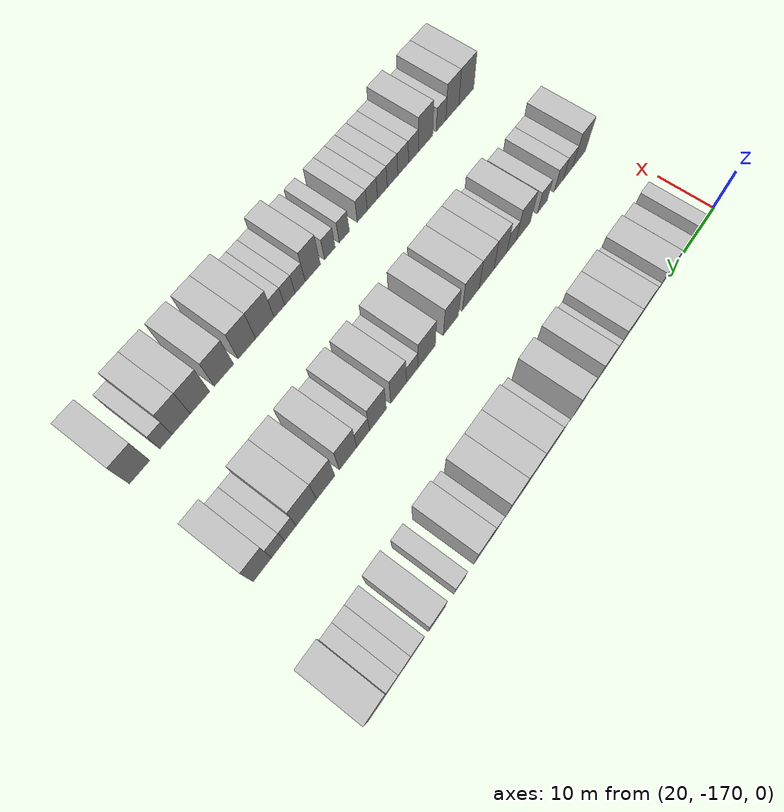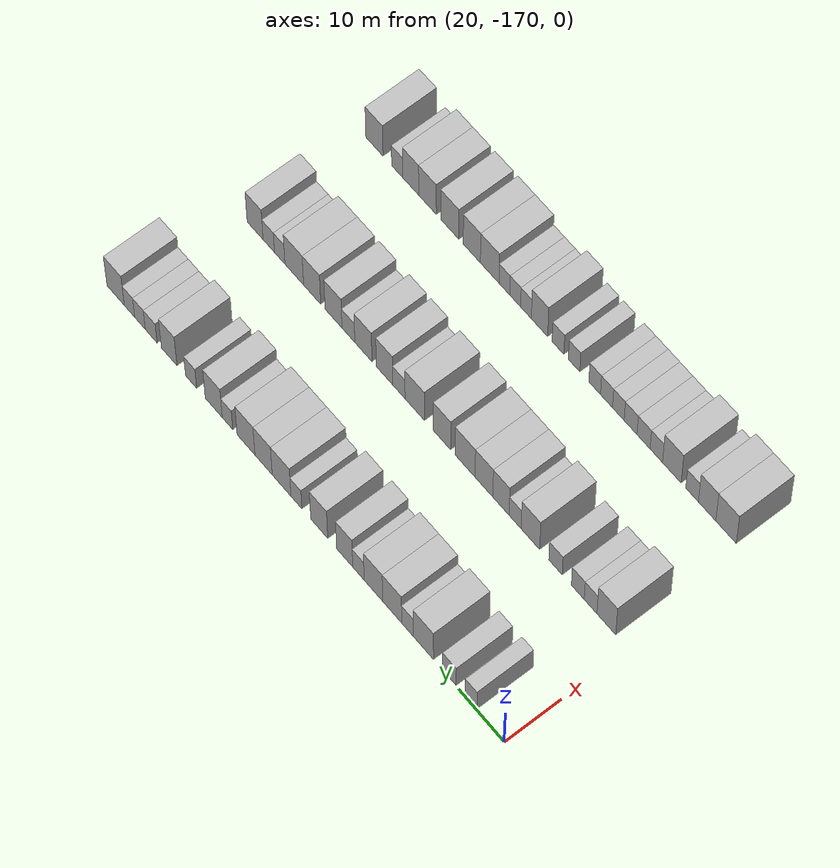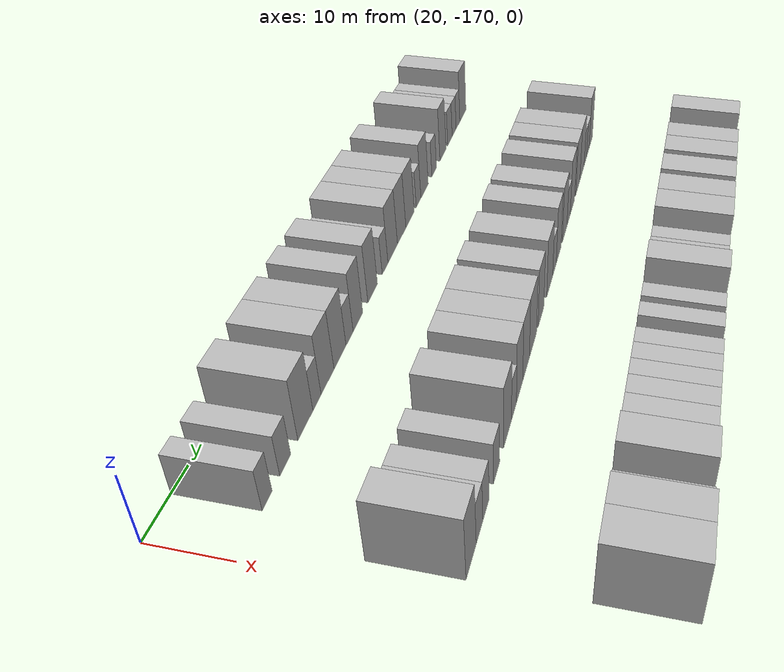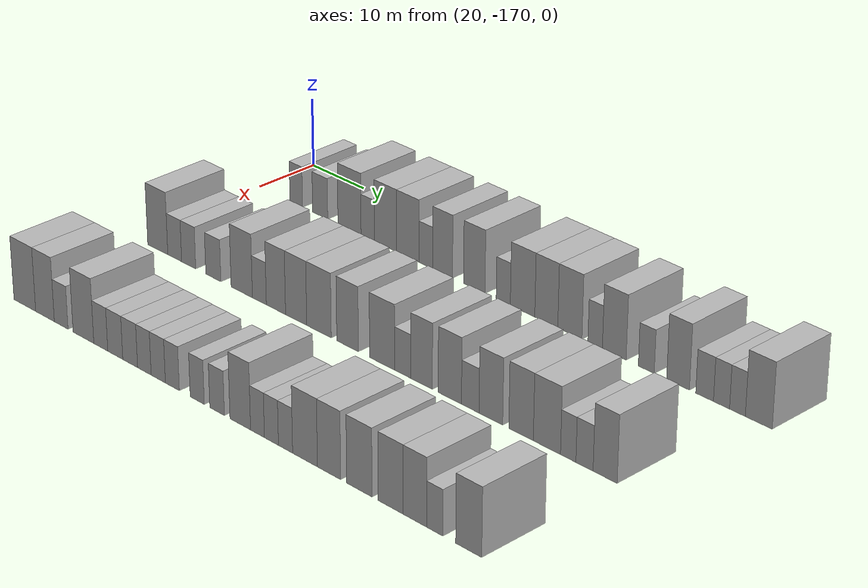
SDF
<sdf version="1.6">
 <world name="default">
  <model name="building_24">
   <static>1</static>
   <pose>25.0000 -162.6117 0 0.000000 0.000000 0.000000</pose>
   <link name="link">
    <pose>0 0 3.00 0 0 0</pose>
    <collision name="collision"><geometry><box><size>10.0000 2.5330 6.0000</size></box></geometry></collision>
    <visual name="visual">
     <cast_shadows>0</cast_shadows>
     <geometry><box><size>10.0000 2.5330 6.0000</size></box></geometry>
     <material>
      <script>
       <uri>model://HANNAS_wall/materials/scripts</uri>
       <uri>model://HANNAS_wall/materials/textures</uri>
       <name>vrc/HANNAS_wall</name>
      </script>
     </material>
    </visual>
   </link>
  </model>
  <model name="building_25">
   <static>1</static>
   <pose>25.0000 -157.8516 0 0.000000 0.000000 0.000000</pose>
   <link name="link">
    <pose>0 0 3.00 0 0 0</pose>
    <collision name="collision"><geometry><box><size>10.0000 2.9871 6.0000</size></box></geometry></collision>
    <visual name="visual">
     <cast_shadows>0</cast_shadows>
     <geometry><box><size>10.0000 2.9871 6.0000</size></box></geometry>
     <material>
      <script>
       <uri>model://HANNAS_wall/materials/scripts</uri>
       <uri>model://HANNAS_wall/materials/textures</uri>
       <name>vrc/HANNAS_wall</name>
      </script>
     </material>
    </visual>
   </link>
  </model>
  <model name="building_26">
   <static>1</static>
   <pose>25.0000 -152.1176 0 0.000000 0.000000 0.000000</pose>
   <link name="link">
    <pose>0 0 4.50 0 0 0</pose>
    <collision name="collision"><geometry><box><size>10.0000 4.4809 9.0000</size></box></geometry></collision>
    <visual name="visual">
     <cast_shadows>0</cast_shadows>
     <geometry><box><size>10.0000 4.4809 9.0000</size></box></geometry>
     <material>
      <script>
       <uri>model://HANNAS_wall/materials/scripts</uri>
       <uri>model://HANNAS_wall/materials/textures</uri>
       <name>vrc/HANNAS_wall</name>
      </script>
     </material>
    </visual>
   </link>
  </model>
  <model name="building_27">
   <static>1</static>
   <pose>25.0000 -148.6011 0 0.000000 0.000000 0.000000</pose>
   <link name="link">
    <pose>0 0 3.00 0 0 0</pose>
    <collision name="collision"><geometry><box><size>10.0000 2.5522 6.0000</size></box></geometry></collision>
    <visual name="visual">
     <cast_shadows>0</cast_shadows>
     <geometry><box><size>10.0000 2.5522 6.0000</size></box></geometry>
     <material>
      <script>
       <uri>model://HANNAS_wall/materials/scripts</uri>
       <uri>model://HANNAS_wall/materials/textures</uri>
       <name>vrc/HANNAS_wall</name>
      </script>
     </material>
    </visual>
   </link>
  </model>
  <model name="building_28">
   <static>1</static>
   <pose>25.0000 -145.2141 0 0.000000 0.000000 0.000000</pose>
   <link name="link">
    <pose>0 0 4.50 0 0 0</pose>
    <collision name="collision"><geometry><box><size>10.0000 4.2217 9.0000</size></box></geometry></collision>
    <visual name="visual">
     <cast_shadows>0</cast_shadows>
     <geometry><box><size>10.0000 4.2217 9.0000</size></box></geometry>
     <material>
      <script>
       <uri>model://HANNAS_wall/materials/scripts</uri>
       <uri>model://HANNAS_wall/materials/textures</uri>
       <name>vrc/HANNAS_wall</name>
      </script>
     </material>
    </visual>
   </link>
  </model>
  <model name="building_29">
   <static>1</static>
   <pose>25.0000 -141.0265 0 0.000000 0.000000 0.000000</pose>
   <link name="link">
    <pose>0 0 4.50 0 0 0</pose>
    <collision name="collision"><geometry><box><size>10.0000 4.1534 9.0000</size></box></geometry></collision>
    <visual name="visual">
     <cast_shadows>0</cast_shadows>
     <geometry><box><size>10.0000 4.1534 9.0000</size></box></geometry>
     <material>
      <script>
       <uri>model://HANNAS_wall/materials/scripts</uri>
       <uri>model://HANNAS_wall/materials/textures</uri>
       <name>vrc/HANNAS_wall</name>
      </script>
     </material>
    </visual>
   </link>
  </model>
  <model name="building_30">
   <static>1</static>
   <pose>25.0000 -137.6640 0 0.000000 0.000000 0.000000</pose>
   <link name="link">
    <pose>0 0 3.00 0 0 0</pose>
    <collision name="collision"><geometry><box><size>10.0000 2.5716 6.0000</size></box></geometry></collision>
    <visual name="visual">
     <cast_shadows>0</cast_shadows>
     <geometry><box><size>10.0000 2.5716 6.0000</size></box></geometry>
     <material>
      <script>
       <uri>model://HANNAS_wall/materials/scripts</uri>
       <uri>model://HANNAS_wall/materials/textures</uri>
       <name>vrc/HANNAS_wall</name>
      </script>
     </material>
    </visual>
   </link>
  </model>
  <model name="building_31">
   <static>1</static>
   <pose>25.0000 -134.5662 0 0.000000 0.000000 0.000000</pose>
   <link name="link">
    <pose>0 0 4.50 0 0 0</pose>
    <collision name="collision"><geometry><box><size>10.0000 3.6239 9.0000</size></box></geometry></collision>
    <visual name="visual">
     <cast_shadows>0</cast_shadows>
     <geometry><box><size>10.0000 3.6239 9.0000</size></box></geometry>
     <material>
      <script>
       <uri>model://HANNAS_wall/materials/scripts</uri>
       <uri>model://HANNAS_wall/materials/textures</uri>
       <name>vrc/HANNAS_wall</name>
      </script>
     </material>
    </visual>
   </link>
  </model>
  <model name="building_32">
   <static>1</static>
   <pose>25.0000 -128.8275 0 0.000000 0.000000 0.000000</pose>
   <link name="link">
    <pose>0 0 4.50 0 0 0</pose>
    <collision name="collision"><geometry><box><size>10.0000 3.8537 9.0000</size></box></geometry></collision>
    <visual name="visual">
     <cast_shadows>0</cast_shadows>
     <geometry><box><size>10.0000 3.8537 9.0000</size></box></geometry>
     <material>
      <script>
       <uri>model://HANNAS_wall/materials/scripts</uri>
       <uri>model://HANNAS_wall/materials/textures</uri>
       <name>vrc/HANNAS_wall</name>
      </script>
     </material>
    </visual>
   </link>
  </model>
  <model name="building_33">
   <static>1</static>
   <pose>25.0000 -123.6524 0 0.000000 0.000000 0.000000</pose>
   <link name="link">
    <pose>0 0 3.00 0 0 0</pose>
    <collision name="collision"><geometry><box><size>10.0000 2.4964 6.0000</size></box></geometry></collision>
    <visual name="visual">
     <cast_shadows>0</cast_shadows>
     <geometry><box><size>10.0000 2.4964 6.0000</size></box></geometry>
     <material>
      <script>
       <uri>model://HANNAS_wall/materials/scripts</uri>
       <uri>model://HANNAS_wall/materials/textures</uri>
       <name>vrc/HANNAS_wall</name>
      </script>
     </material>
    </visual>
   </link>
  </model>
  <model name="building_34">
   <static>1</static>
   <pose>25.0000 -120.2698 0 0.000000 0.000000 0.000000</pose>
   <link name="link">
    <pose>0 0 4.50 0 0 0</pose>
    <collision name="collision"><geometry><box><size>10.0000 4.2689 9.0000</size></box></geometry></collision>
    <visual name="visual">
     <cast_shadows>0</cast_shadows>
     <geometry><box><size>10.0000 4.2689 9.0000</size></box></geometry>
     <material>
      <script>
       <uri>model://HANNAS_wall/materials/scripts</uri>
       <uri>model://HANNAS_wall/materials/textures</uri>
       <name>vrc/HANNAS_wall</name>
      </script>
     </material>
    </visual>
   </link>
  </model>
  <model name="building_35">
   <static>1</static>
   <pose>25.0000 -116.1545 0 0.000000 0.000000 0.000000</pose>
   <link name="link">
    <pose>0 0 4.50 0 0 0</pose>
    <collision name="collision"><geometry><box><size>10.0000 3.9617 9.0000</size></box></geometry></collision>
    <visual name="visual">
     <cast_shadows>0</cast_shadows>
     <geometry><box><size>10.0000 3.9617 9.0000</size></box></geometry>
     <material>
      <script>
       <uri>model://HANNAS_wall/materials/scripts</uri>
       <uri>model://HANNAS_wall/materials/textures</uri>
       <name>vrc/HANNAS_wall</name>
      </script>
     </material>
    </visual>
   </link>
  </model>
  <model name="building_36">
   <static>1</static>
   <pose>25.0000 -112.1218 0 0.000000 0.000000 0.000000</pose>
   <link name="link">
    <pose>0 0 4.50 0 0 0</pose>
    <collision name="collision"><geometry><box><size>10.0000 4.1037 9.0000</size></box></geometry></collision>
    <visual name="visual">
     <cast_shadows>0</cast_shadows>
     <geometry><box><size>10.0000 4.1037 9.0000</size></box></geometry>
     <material>
      <script>
       <uri>model://HANNAS_wall/materials/scripts</uri>
       <uri>model://HANNAS_wall/materials/textures</uri>
       <name>vrc/HANNAS_wall</name>
      </script>
     </material>
    </visual>
   </link>
  </model>
  <model name="building_37">
   <static>1</static>
   <pose>25.0000 -107.8564 0 0.000000 0.000000 0.000000</pose>
   <link name="link">
    <pose>0 0 3.00 0 0 0</pose>
    <collision name="collision"><geometry><box><size>10.0000 2.4271 6.0000</size></box></geometry></collision>
    <visual name="visual">
     <cast_shadows>0</cast_shadows>
     <geometry><box><size>10.0000 2.4271 6.0000</size></box></geometry>
     <material>
      <script>
       <uri>model://HANNAS_wall/materials/scripts</uri>
       <uri>model://HANNAS_wall/materials/textures</uri>
       <name>vrc/HANNAS_wall</name>
      </script>
     </material>
    </visual>
   </link>
  </model>
  <model name="building_38">
   <static>1</static>
   <pose>25.0000 -104.6770 0 0.000000 0.000000 0.000000</pose>
   <link name="link">
    <pose>0 0 4.50 0 0 0</pose>
    <collision name="collision"><geometry><box><size>10.0000 3.9317 9.0000</size></box></geometry></collision>
    <visual name="visual">
     <cast_shadows>0</cast_shadows>
     <geometry><box><size>10.0000 3.9317 9.0000</size></box></geometry>
     <material>
      <script>
       <uri>model://HANNAS_wall/materials/scripts</uri>
       <uri>model://HANNAS_wall/materials/textures</uri>
       <name>vrc/HANNAS_wall</name>
      </script>
     </material>
    </visual>
   </link>
  </model>
  <model name="building_39">
   <static>1</static>
   <pose>25.0000 -99.4167 0 0.000000 0.000000 0.000000</pose>
   <link name="link">
    <pose>0 0 3.00 0 0 0</pose>
    <collision name="collision"><geometry><box><size>10.0000 2.5888 6.0000</size></box></geometry></collision>
    <visual name="visual">
     <cast_shadows>0</cast_shadows>
     <geometry><box><size>10.0000 2.5888 6.0000</size></box></geometry>
     <material>
      <script>
       <uri>model://HANNAS_wall/materials/scripts</uri>
       <uri>model://HANNAS_wall/materials/textures</uri>
       <name>vrc/HANNAS_wall</name>
      </script>
     </material>
    </visual>
   </link>
  </model>
  <model name="building_40">
   <static>1</static>
   <pose>25.0000 -94.3034 0 0.000000 0.000000 0.000000</pose>
   <link name="link">
    <pose>0 0 4.50 0 0 0</pose>
    <collision name="collision"><geometry><box><size>10.0000 3.6380 9.0000</size></box></geometry></collision>
    <visual name="visual">
     <cast_shadows>0</cast_shadows>
     <geometry><box><size>10.0000 3.6380 9.0000</size></box></geometry>
     <material>
      <script>
       <uri>model://HANNAS_wall/materials/scripts</uri>
       <uri>model://HANNAS_wall/materials/textures</uri>
       <name>vrc/HANNAS_wall</name>
      </script>
     </material>
    </visual>
   </link>
  </model>
  <model name="building_41">
   <static>1</static>
   <pose>25.0000 -90.0918 0 0.000000 0.000000 0.000000</pose>
   <link name="link">
    <pose>0 0 3.00 0 0 0</pose>
    <collision name="collision"><geometry><box><size>10.0000 2.7851 6.0000</size></box></geometry></collision>
    <visual name="visual">
     <cast_shadows>0</cast_shadows>
     <geometry><box><size>10.0000 2.7851 6.0000</size></box></geometry>
     <material>
      <script>
       <uri>model://HANNAS_wall/materials/scripts</uri>
       <uri>model://HANNAS_wall/materials/textures</uri>
       <name>vrc/HANNAS_wall</name>
      </script>
     </material>
    </visual>
   </link>
  </model>
  <model name="building_42">
   <static>1</static>
   <pose>25.0000 -87.4469 0 0.000000 0.000000 0.000000</pose>
   <link name="link">
    <pose>0 0 3.00 0 0 0</pose>
    <collision name="collision"><geometry><box><size>10.0000 2.5049 6.0000</size></box></geometry></collision>
    <visual name="visual">
     <cast_shadows>0</cast_shadows>
     <geometry><box><size>10.0000 2.5049 6.0000</size></box></geometry>
     <material>
      <script>
       <uri>model://HANNAS_wall/materials/scripts</uri>
       <uri>model://HANNAS_wall/materials/textures</uri>
       <name>vrc/HANNAS_wall</name>
      </script>
     </material>
    </visual>
   </link>
  </model>
  <model name="building_43">
   <static>1</static>
   <pose>25.0000 -84.9768 0 0.000000 0.000000 0.000000</pose>
   <link name="link">
    <pose>0 0 3.00 0 0 0</pose>
    <collision name="collision"><geometry><box><size>10.0000 2.4352 6.0000</size></box></geometry></collision>
    <visual name="visual">
     <cast_shadows>0</cast_shadows>
     <geometry><box><size>10.0000 2.4352 6.0000</size></box></geometry>
     <material>
      <script>
       <uri>model://HANNAS_wall/materials/scripts</uri>
       <uri>model://HANNAS_wall/materials/textures</uri>
       <name>vrc/HANNAS_wall</name>
      </script>
     </material>
    </visual>
   </link>
  </model>
  <model name="building_44">
   <static>1</static>
   <pose>25.0000 -81.7078 0 0.000000 0.000000 0.000000</pose>
   <link name="link">
    <pose>0 0 4.50 0 0 0</pose>
    <collision name="collision"><geometry><box><size>10.0000 4.1026 9.0000</size></box></geometry></collision>
    <visual name="visual">
     <cast_shadows>0</cast_shadows>
     <geometry><box><size>10.0000 4.1026 9.0000</size></box></geometry>
     <material>
      <script>
       <uri>model://HANNAS_wall/materials/scripts</uri>
       <uri>model://HANNAS_wall/materials/textures</uri>
       <name>vrc/HANNAS_wall</name>
      </script>
     </material>
    </visual>
   </link>
  </model>
  <model name="building_150">
   <static>1</static>
   <pose>47.0000 -165.2471 0 0.000000 0.000000 0.000000</pose>
   <link name="link">
    <pose>0 0 4.50 0 0 0</pose>
    <collision name="collision"><geometry><box><size>10.0000 4.0716 9.0000</size></box></geometry></collision>
    <visual name="visual">
     <cast_shadows>0</cast_shadows>
     <geometry><box><size>10.0000 4.0716 9.0000</size></box></geometry>
     <material>
      <script>
       <uri>model://HANNAS_wall/materials/scripts</uri>
       <uri>model://HANNAS_wall/materials/textures</uri>
       <name>vrc/HANNAS_wall</name>
      </script>
     </material>
    </visual>
   </link>
  </model>
  <model name="building_151">
   <static>1</static>
   <pose>47.0000 -161.8184 0 0.000000 0.000000 0.000000</pose>
   <link name="link">
    <pose>0 0 3.00 0 0 0</pose>
    <collision name="collision"><geometry><box><size>10.0000 2.7857 6.0000</size></box></geometry></collision>
    <visual name="visual">
     <cast_shadows>0</cast_shadows>
     <geometry><box><size>10.0000 2.7857 6.0000</size></box></geometry>
     <material>
      <script>
       <uri>model://HANNAS_wall/materials/scripts</uri>
       <uri>model://HANNAS_wall/materials/textures</uri>
       <name>vrc/HANNAS_wall</name>
      </script>
     </material>
    </visual>
   </link>
  </model>
  <model name="building_152">
   <static>1</static>
   <pose>47.0000 -159.0209 0 0.000000 0.000000 0.000000</pose>
   <link name="link">
    <pose>0 0 3.00 0 0 0</pose>
    <collision name="collision"><geometry><box><size>10.0000 2.8094 6.0000</size></box></geometry></collision>
    <visual name="visual">
     <cast_shadows>0</cast_shadows>
     <geometry><box><size>10.0000 2.8094 6.0000</size></box></geometry>
     <material>
      <script>
       <uri>model://HANNAS_wall/materials/scripts</uri>
       <uri>model://HANNAS_wall/materials/textures</uri>
       <name>vrc/HANNAS_wall</name>
      </script>
     </material>
    </visual>
   </link>
  </model>
  <model name="building_153">
   <static>1</static>
   <pose>47.0000 -154.1370 0 0.000000 0.000000 0.000000</pose>
   <link name="link">
    <pose>0 0 3.00 0 0 0</pose>
    <collision name="collision"><geometry><box><size>10.0000 2.9584 6.0000</size></box></geometry></collision>
    <visual name="visual">
     <cast_shadows>0</cast_shadows>
     <geometry><box><size>10.0000 2.9584 6.0000</size></box></geometry>
     <material>
      <script>
       <uri>model://HANNAS_wall/materials/scripts</uri>
       <uri>model://HANNAS_wall/materials/textures</uri>
       <name>vrc/HANNAS_wall</name>
      </script>
     </material>
    </visual>
   </link>
  </model>
  <model name="building_154">
   <static>1</static>
   <pose>47.0000 -148.6091 0 0.000000 0.000000 0.000000</pose>
   <link name="link">
    <pose>0 0 4.50 0 0 0</pose>
    <collision name="collision"><geometry><box><size>10.0000 4.0973 9.0000</size></box></geometry></collision>
    <visual name="visual">
     <cast_shadows>0</cast_shadows>
     <geometry><box><size>10.0000 4.0973 9.0000</size></box></geometry>
     <material>
      <script>
       <uri>model://HANNAS_wall/materials/scripts</uri>
       <uri>model://HANNAS_wall/materials/textures</uri>
       <name>vrc/HANNAS_wall</name>
      </script>
     </material>
    </visual>
   </link>
  </model>
  <model name="building_155">
   <static>1</static>
   <pose>47.0000 -145.2331 0 0.000000 0.000000 0.000000</pose>
   <link name="link">
    <pose>0 0 3.00 0 0 0</pose>
    <collision name="collision"><geometry><box><size>10.0000 2.6548 6.0000</size></box></geometry></collision>
    <visual name="visual">
     <cast_shadows>0</cast_shadows>
     <geometry><box><size>10.0000 2.6548 6.0000</size></box></geometry>
     <material>
      <script>
       <uri>model://HANNAS_wall/materials/scripts</uri>
       <uri>model://HANNAS_wall/materials/textures</uri>
       <name>vrc/HANNAS_wall</name>
      </script>
     </material>
    </visual>
   </link>
  </model>
  <model name="building_156">
   <static>1</static>
   <pose>47.0000 -142.0942 0 0.000000 0.000000 0.000000</pose>
   <link name="link">
    <pose>0 0 4.50 0 0 0</pose>
    <collision name="collision"><geometry><box><size>10.0000 3.6230 9.0000</size></box></geometry></collision>
    <visual name="visual">
     <cast_shadows>0</cast_shadows>
     <geometry><box><size>10.0000 3.6230 9.0000</size></box></geometry>
     <material>
      <script>
       <uri>model://HANNAS_wall/materials/scripts</uri>
       <uri>model://HANNAS_wall/materials/textures</uri>
       <name>vrc/HANNAS_wall</name>
      </script>
     </material>
    </visual>
   </link>
  </model>
  <model name="building_157">
   <static>1</static>
   <pose>47.0000 -138.3102 0 0.000000 0.000000 0.000000</pose>
   <link name="link">
    <pose>0 0 4.50 0 0 0</pose>
    <collision name="collision"><geometry><box><size>10.0000 3.9448 9.0000</size></box></geometry></collision>
    <visual name="visual">
     <cast_shadows>0</cast_shadows>
     <geometry><box><size>10.0000 3.9448 9.0000</size></box></geometry>
     <material>
      <script>
       <uri>model://HANNAS_wall/materials/scripts</uri>
       <uri>model://HANNAS_wall/materials/textures</uri>
       <name>vrc/HANNAS_wall</name>
      </script>
     </material>
    </visual>
   </link>
  </model>
  <model name="building_158">
   <static>1</static>
   <pose>47.0000 -134.0884 0 0.000000 0.000000 0.000000</pose>
   <link name="link">
    <pose>0 0 4.50 0 0 0</pose>
    <collision name="collision"><geometry><box><size>10.0000 4.4989 9.0000</size></box></geometry></collision>
    <visual name="visual">
     <cast_shadows>0</cast_shadows>
     <geometry><box><size>10.0000 4.4989 9.0000</size></box></geometry>
     <material>
      <script>
       <uri>model://HANNAS_wall/materials/scripts</uri>
       <uri>model://HANNAS_wall/materials/textures</uri>
       <name>vrc/HANNAS_wall</name>
      </script>
     </material>
    </visual>
   </link>
  </model>
  <model name="building_159">
   <static>1</static>
   <pose>47.0000 -128.8917 0 0.000000 0.000000 0.000000</pose>
   <link name="link">
    <pose>0 0 4.50 0 0 0</pose>
    <collision name="collision"><geometry><box><size>10.0000 3.8944 9.0000</size></box></geometry></collision>
    <visual name="visual">
     <cast_shadows>0</cast_shadows>
     <geometry><box><size>10.0000 3.8944 9.0000</size></box></geometry>
     <material>
      <script>
       <uri>model://HANNAS_wall/materials/scripts</uri>
       <uri>model://HANNAS_wall/materials/textures</uri>
       <name>vrc/HANNAS_wall</name>
      </script>
     </material>
    </visual>
   </link>
  </model>
  <model name="building_160">
   <static>1</static>
   <pose>47.0000 -122.7475 0 0.000000 0.000000 0.000000</pose>
   <link name="link">
    <pose>0 0 4.50 0 0 0</pose>
    <collision name="collision"><geometry><box><size>10.0000 4.3940 9.0000</size></box></geometry></collision>
    <visual name="visual">
     <cast_shadows>0</cast_shadows>
     <geometry><box><size>10.0000 4.3940 9.0000</size></box></geometry>
     <material>
      <script>
       <uri>model://HANNAS_wall/materials/scripts</uri>
       <uri>model://HANNAS_wall/materials/textures</uri>
       <name>vrc/HANNAS_wall</name>
      </script>
     </material>
    </visual>
   </link>
  </model>
  <model name="building_161">
   <static>1</static>
   <pose>47.0000 -119.1583 0 0.000000 0.000000 0.000000</pose>
   <link name="link">
    <pose>0 0 3.00 0 0 0</pose>
    <collision name="collision"><geometry><box><size>10.0000 2.7843 6.0000</size></box></geometry></collision>
    <visual name="visual">
     <cast_shadows>0</cast_shadows>
     <geometry><box><size>10.0000 2.7843 6.0000</size></box></geometry>
     <material>
      <script>
       <uri>model://HANNAS_wall/materials/scripts</uri>
       <uri>model://HANNAS_wall/materials/textures</uri>
       <name>vrc/HANNAS_wall</name>
      </script>
     </material>
    </visual>
   </link>
  </model>
  <model name="building_162">
   <static>1</static>
   <pose>47.0000 -115.8877 0 0.000000 0.000000 0.000000</pose>
   <link name="link">
    <pose>0 0 4.50 0 0 0</pose>
    <collision name="collision"><geometry><box><size>10.0000 3.7570 9.0000</size></box></geometry></collision>
    <visual name="visual">
     <cast_shadows>0</cast_shadows>
     <geometry><box><size>10.0000 3.7570 9.0000</size></box></geometry>
     <material>
      <script>
       <uri>model://HANNAS_wall/materials/scripts</uri>
       <uri>model://HANNAS_wall/materials/textures</uri>
       <name>vrc/HANNAS_wall</name>
      </script>
     </material>
    </visual>
   </link>
  </model>
  <model name="building_163">
   <static>1</static>
   <pose>47.0000 -111.0406 0 0.000000 0.000000 0.000000</pose>
   <link name="link">
    <pose>0 0 4.50 0 0 0</pose>
    <collision name="collision"><geometry><box><size>10.0000 3.9372 9.0000</size></box></geometry></collision>
    <visual name="visual">
     <cast_shadows>0</cast_shadows>
     <geometry><box><size>10.0000 3.9372 9.0000</size></box></geometry>
     <material>
      <script>
       <uri>model://HANNAS_wall/materials/scripts</uri>
       <uri>model://HANNAS_wall/materials/textures</uri>
       <name>vrc/HANNAS_wall</name>
      </script>
     </material>
    </visual>
   </link>
  </model>
  <model name="building_164">
   <static>1</static>
   <pose>47.0000 -107.6053 0 0.000000 0.000000 0.000000</pose>
   <link name="link">
    <pose>0 0 3.00 0 0 0</pose>
    <collision name="collision"><geometry><box><size>10.0000 2.9334 6.0000</size></box></geometry></collision>
    <visual name="visual">
     <cast_shadows>0</cast_shadows>
     <geometry><box><size>10.0000 2.9334 6.0000</size></box></geometry>
     <material>
      <script>
       <uri>model://HANNAS_wall/materials/scripts</uri>
       <uri>model://HANNAS_wall/materials/textures</uri>
       <name>vrc/HANNAS_wall</name>
      </script>
     </material>
    </visual>
   </link>
  </model>
  <model name="building_165">
   <static>1</static>
   <pose>47.0000 -104.1823 0 0.000000 0.000000 0.000000</pose>
   <link name="link">
    <pose>0 0 4.50 0 0 0</pose>
    <collision name="collision"><geometry><box><size>10.0000 3.9127 9.0000</size></box></geometry></collision>
    <visual name="visual">
     <cast_shadows>0</cast_shadows>
     <geometry><box><size>10.0000 3.9127 9.0000</size></box></geometry>
     <material>
      <script>
       <uri>model://HANNAS_wall/materials/scripts</uri>
       <uri>model://HANNAS_wall/materials/textures</uri>
       <name>vrc/HANNAS_wall</name>
      </script>
     </material>
    </visual>
   </link>
  </model>
  <model name="building_166">
   <static>1</static>
   <pose>47.0000 -99.2385 0 0.000000 0.000000 0.000000</pose>
   <link name="link">
    <pose>0 0 4.50 0 0 0</pose>
    <collision name="collision"><geometry><box><size>10.0000 3.9748 9.0000</size></box></geometry></collision>
    <visual name="visual">
     <cast_shadows>0</cast_shadows>
     <geometry><box><size>10.0000 3.9748 9.0000</size></box></geometry>
     <material>
      <script>
       <uri>model://HANNAS_wall/materials/scripts</uri>
       <uri>model://HANNAS_wall/materials/textures</uri>
       <name>vrc/HANNAS_wall</name>
      </script>
     </material>
    </visual>
   </link>
  </model>
  <model name="building_167">
   <static>1</static>
   <pose>47.0000 -95.0784 0 0.000000 0.000000 0.000000</pose>
   <link name="link">
    <pose>0 0 4.50 0 0 0</pose>
    <collision name="collision"><geometry><box><size>10.0000 4.3454 9.0000</size></box></geometry></collision>
    <visual name="visual">
     <cast_shadows>0</cast_shadows>
     <geometry><box><size>10.0000 4.3454 9.0000</size></box></geometry>
     <material>
      <script>
       <uri>model://HANNAS_wall/materials/scripts</uri>
       <uri>model://HANNAS_wall/materials/textures</uri>
       <name>vrc/HANNAS_wall</name>
      </script>
     </material>
    </visual>
   </link>
  </model>
  <model name="building_168">
   <static>1</static>
   <pose>47.0000 -91.6898 0 0.000000 0.000000 0.000000</pose>
   <link name="link">
    <pose>0 0 3.00 0 0 0</pose>
    <collision name="collision"><geometry><box><size>10.0000 2.4317 6.0000</size></box></geometry></collision>
    <visual name="visual">
     <cast_shadows>0</cast_shadows>
     <geometry><box><size>10.0000 2.4317 6.0000</size></box></geometry>
     <material>
      <script>
       <uri>model://HANNAS_wall/materials/scripts</uri>
       <uri>model://HANNAS_wall/materials/textures</uri>
       <name>vrc/HANNAS_wall</name>
      </script>
     </material>
    </visual>
   </link>
  </model>
  <model name="building_169">
   <static>1</static>
   <pose>47.0000 -89.1323 0 0.000000 0.000000 0.000000</pose>
   <link name="link">
    <pose>0 0 3.00 0 0 0</pose>
    <collision name="collision"><geometry><box><size>10.0000 2.6834 6.0000</size></box></geometry></collision>
    <visual name="visual">
     <cast_shadows>0</cast_shadows>
     <geometry><box><size>10.0000 2.6834 6.0000</size></box></geometry>
     <material>
      <script>
       <uri>model://HANNAS_wall/materials/scripts</uri>
       <uri>model://HANNAS_wall/materials/textures</uri>
       <name>vrc/HANNAS_wall</name>
      </script>
     </material>
    </visual>
   </link>
  </model>
  <model name="building_170">
   <static>1</static>
   <pose>47.0000 -85.9296 0 0.000000 0.000000 0.000000</pose>
   <link name="link">
    <pose>0 0 4.50 0 0 0</pose>
    <collision name="collision"><geometry><box><size>10.0000 3.7218 9.0000</size></box></geometry></collision>
    <visual name="visual">
     <cast_shadows>0</cast_shadows>
     <geometry><box><size>10.0000 3.7218 9.0000</size></box></geometry>
     <material>
      <script>
       <uri>model://HANNAS_wall/materials/scripts</uri>
       <uri>model://HANNAS_wall/materials/textures</uri>
       <name>vrc/HANNAS_wall</name>
      </script>
     </material>
    </visual>
   </link>
  </model>
  <model name="building_277">
   <static>1</static>
   <pose>69.0000 -164.9419 0 0.000000 0.000000 0.000000</pose>
   <link name="link">
    <pose>0 0 4.50 0 0 0</pose>
    <collision name="collision"><geometry><box><size>10.0000 4.4459 9.0000</size></box></geometry></collision>
    <visual name="visual">
     <cast_shadows>0</cast_shadows>
     <geometry><box><size>10.0000 4.4459 9.0000</size></box></geometry>
     <material>
      <script>
       <uri>model://HANNAS_wall/materials/scripts</uri>
       <uri>model://HANNAS_wall/materials/textures</uri>
       <name>vrc/HANNAS_wall</name>
      </script>
     </material>
    </visual>
   </link>
  </model>
  <model name="building_278">
   <static>1</static>
   <pose>69.0000 -160.8279 0 0.000000 0.000000 0.000000</pose>
   <link name="link">
    <pose>0 0 4.50 0 0 0</pose>
    <collision name="collision"><geometry><box><size>10.0000 3.7821 9.0000</size></box></geometry></collision>
    <visual name="visual">
     <cast_shadows>0</cast_shadows>
     <geometry><box><size>10.0000 3.7821 9.0000</size></box></geometry>
     <material>
      <script>
       <uri>model://HANNAS_wall/materials/scripts</uri>
       <uri>model://HANNAS_wall/materials/textures</uri>
       <name>vrc/HANNAS_wall</name>
      </script>
     </material>
    </visual>
   </link>
  </model>
  <model name="building_279">
   <static>1</static>
   <pose>69.0000 -157.5630 0 0.000000 0.000000 0.000000</pose>
   <link name="link">
    <pose>0 0 3.00 0 0 0</pose>
    <collision name="collision"><geometry><box><size>10.0000 2.7476 6.0000</size></box></geometry></collision>
    <visual name="visual">
     <cast_shadows>0</cast_shadows>
     <geometry><box><size>10.0000 2.7476 6.0000</size></box></geometry>
     <material>
      <script>
       <uri>model://HANNAS_wall/materials/scripts</uri>
       <uri>model://HANNAS_wall/materials/textures</uri>
       <name>vrc/HANNAS_wall</name>
      </script>
     </material>
    </visual>
   </link>
  </model>
  <model name="building_280">
   <static>1</static>
   <pose>69.0000 -153.1448 0 0.000000 0.000000 0.000000</pose>
   <link name="link">
    <pose>0 0 4.50 0 0 0</pose>
    <collision name="collision"><geometry><box><size>10.0000 4.0890 9.0000</size></box></geometry></collision>
    <visual name="visual">
     <cast_shadows>0</cast_shadows>
     <geometry><box><size>10.0000 4.0890 9.0000</size></box></geometry>
     <material>
      <script>
       <uri>model://HANNAS_wall/materials/scripts</uri>
       <uri>model://HANNAS_wall/materials/textures</uri>
       <name>vrc/HANNAS_wall</name>
      </script>
     </material>
    </visual>
   </link>
  </model>
  <model name="building_281">
   <static>1</static>
   <pose>69.0000 -149.7358 0 0.000000 0.000000 0.000000</pose>
   <link name="link">
    <pose>0 0 3.00 0 0 0</pose>
    <collision name="collision"><geometry><box><size>10.0000 2.7290 6.0000</size></box></geometry></collision>
    <visual name="visual">
     <cast_shadows>0</cast_shadows>
     <geometry><box><size>10.0000 2.7290 6.0000</size></box></geometry>
     <material>
      <script>
       <uri>model://HANNAS_wall/materials/scripts</uri>
       <uri>model://HANNAS_wall/materials/textures</uri>
       <name>vrc/HANNAS_wall</name>
      </script>
     </material>
    </visual>
   </link>
  </model>
  <model name="building_282">
   <static>1</static>
   <pose>69.0000 -146.9242 0 0.000000 0.000000 0.000000</pose>
   <link name="link">
    <pose>0 0 3.00 0 0 0</pose>
    <collision name="collision"><geometry><box><size>10.0000 2.8942 6.0000</size></box></geometry></collision>
    <visual name="visual">
     <cast_shadows>0</cast_shadows>
     <geometry><box><size>10.0000 2.8942 6.0000</size></box></geometry>
     <material>
      <script>
       <uri>model://HANNAS_wall/materials/scripts</uri>
       <uri>model://HANNAS_wall/materials/textures</uri>
       <name>vrc/HANNAS_wall</name>
      </script>
     </material>
    </visual>
   </link>
  </model>
  <model name="building_283">
   <static>1</static>
   <pose>69.0000 -144.0580 0 0.000000 0.000000 0.000000</pose>
   <link name="link">
    <pose>0 0 3.00 0 0 0</pose>
    <collision name="collision"><geometry><box><size>10.0000 2.8381 6.0000</size></box></geometry></collision>
    <visual name="visual">
     <cast_shadows>0</cast_shadows>
     <geometry><box><size>10.0000 2.8381 6.0000</size></box></geometry>
     <material>
      <script>
       <uri>model://HANNAS_wall/materials/scripts</uri>
       <uri>model://HANNAS_wall/materials/textures</uri>
       <name>vrc/HANNAS_wall</name>
      </script>
     </material>
    </visual>
   </link>
  </model>
  <model name="building_284">
   <static>1</static>
   <pose>69.0000 -141.3553 0 0.000000 0.000000 0.000000</pose>
   <link name="link">
    <pose>0 0 3.00 0 0 0</pose>
    <collision name="collision"><geometry><box><size>10.0000 2.5674 6.0000</size></box></geometry></collision>
    <visual name="visual">
     <cast_shadows>0</cast_shadows>
     <geometry><box><size>10.0000 2.5674 6.0000</size></box></geometry>
     <material>
      <script>
       <uri>model://HANNAS_wall/materials/scripts</uri>
       <uri>model://HANNAS_wall/materials/textures</uri>
       <name>vrc/HANNAS_wall</name>
      </script>
     </material>
    </visual>
   </link>
  </model>
  <model name="building_285">
   <static>1</static>
   <pose>69.0000 -138.7351 0 0.000000 0.000000 0.000000</pose>
   <link name="link">
    <pose>0 0 3.00 0 0 0</pose>
    <collision name="collision"><geometry><box><size>10.0000 2.6732 6.0000</size></box></geometry></collision>
    <visual name="visual">
     <cast_shadows>0</cast_shadows>
     <geometry><box><size>10.0000 2.6732 6.0000</size></box></geometry>
     <material>
      <script>
       <uri>model://HANNAS_wall/materials/scripts</uri>
       <uri>model://HANNAS_wall/materials/textures</uri>
       <name>vrc/HANNAS_wall</name>
      </script>
     </material>
    </visual>
   </link>
  </model>
  <model name="building_286">
   <static>1</static>
   <pose>69.0000 -136.1006 0 0.000000 0.000000 0.000000</pose>
   <link name="link">
    <pose>0 0 3.00 0 0 0</pose>
    <collision name="collision"><geometry><box><size>10.0000 2.5958 6.0000</size></box></geometry></collision>
    <visual name="visual">
     <cast_shadows>0</cast_shadows>
     <geometry><box><size>10.0000 2.5958 6.0000</size></box></geometry>
     <material>
      <script>
       <uri>model://HANNAS_wall/materials/scripts</uri>
       <uri>model://HANNAS_wall/materials/textures</uri>
       <name>vrc/HANNAS_wall</name>
      </script>
     </material>
    </visual>
   </link>
  </model>
  <model name="building_287">
   <static>1</static>
   <pose>69.0000 -131.5127 0 0.000000 0.000000 0.000000</pose>
   <link name="link">
    <pose>0 0 3.00 0 0 0</pose>
    <collision name="collision"><geometry><box><size>10.0000 2.5799 6.0000</size></box></geometry></collision>
    <visual name="visual">
     <cast_shadows>0</cast_shadows>
     <geometry><box><size>10.0000 2.5799 6.0000</size></box></geometry>
     <material>
      <script>
       <uri>model://HANNAS_wall/materials/scripts</uri>
       <uri>model://HANNAS_wall/materials/textures</uri>
       <name>vrc/HANNAS_wall</name>
      </script>
     </material>
    </visual>
   </link>
  </model>
  <model name="building_288">
   <static>1</static>
   <pose>69.0000 -127.9040 0 0.000000 0.000000 0.000000</pose>
   <link name="link">
    <pose>0 0 3.00 0 0 0</pose>
    <collision name="collision"><geometry><box><size>10.0000 2.6377 6.0000</size></box></geometry></collision>
    <visual name="visual">
     <cast_shadows>0</cast_shadows>
     <geometry><box><size>10.0000 2.6377 6.0000</size></box></geometry>
     <material>
      <script>
       <uri>model://HANNAS_wall/materials/scripts</uri>
       <uri>model://HANNAS_wall/materials/textures</uri>
       <name>vrc/HANNAS_wall</name>
      </script>
     </material>
    </visual>
   </link>
  </model>
  <model name="building_289">
   <static>1</static>
   <pose>69.0000 -123.7526 0 0.000000 0.000000 0.000000</pose>
   <link name="link">
    <pose>0 0 4.50 0 0 0</pose>
    <collision name="collision"><geometry><box><size>10.0000 3.6651 9.0000</size></box></geometry></collision>
    <visual name="visual">
     <cast_shadows>0</cast_shadows>
     <geometry><box><size>10.0000 3.6651 9.0000</size></box></geometry>
     <material>
      <script>
       <uri>model://HANNAS_wall/materials/scripts</uri>
       <uri>model://HANNAS_wall/materials/textures</uri>
       <name>vrc/HANNAS_wall</name>
      </script>
     </material>
    </visual>
   </link>
  </model>
  <model name="building_290">
   <static>1</static>
   <pose>69.0000 -120.7010 0 0.000000 0.000000 0.000000</pose>
   <link name="link">
    <pose>0 0 3.00 0 0 0</pose>
    <collision name="collision"><geometry><box><size>10.0000 2.4381 6.0000</size></box></geometry></collision>
    <visual name="visual">
     <cast_shadows>0</cast_shadows>
     <geometry><box><size>10.0000 2.4381 6.0000</size></box></geometry>
     <material>
      <script>
       <uri>model://HANNAS_wall/materials/scripts</uri>
       <uri>model://HANNAS_wall/materials/textures</uri>
       <name>vrc/HANNAS_wall</name>
      </script>
     </material>
    </visual>
   </link>
  </model>
  <model name="building_291">
   <static>1</static>
   <pose>69.0000 -118.2588 0 0.000000 0.000000 0.000000</pose>
   <link name="link">
    <pose>0 0 3.00 0 0 0</pose>
    <collision name="collision"><geometry><box><size>10.0000 2.4462 6.0000</size></box></geometry></collision>
    <visual name="visual">
     <cast_shadows>0</cast_shadows>
     <geometry><box><size>10.0000 2.4462 6.0000</size></box></geometry>
     <material>
      <script>
       <uri>model://HANNAS_wall/materials/scripts</uri>
       <uri>model://HANNAS_wall/materials/textures</uri>
       <name>vrc/HANNAS_wall</name>
      </script>
     </material>
    </visual>
   </link>
  </model>
  <model name="building_292">
   <static>1</static>
   <pose>69.0000 -115.8103 0 0.000000 0.000000 0.000000</pose>
   <link name="link">
    <pose>0 0 3.00 0 0 0</pose>
    <collision name="collision"><geometry><box><size>10.0000 2.4508 6.0000</size></box></geometry></collision>
    <visual name="visual">
     <cast_shadows>0</cast_shadows>
     <geometry><box><size>10.0000 2.4508 6.0000</size></box></geometry>
     <material>
      <script>
       <uri>model://HANNAS_wall/materials/scripts</uri>
       <uri>model://HANNAS_wall/materials/textures</uri>
       <name>vrc/HANNAS_wall</name>
      </script>
     </material>
    </visual>
   </link>
  </model>
  <model name="building_293">
   <static>1</static>
   <pose>69.0000 -112.4644 0 0.000000 0.000000 0.000000</pose>
   <link name="link">
    <pose>0 0 4.50 0 0 0</pose>
    <collision name="collision"><geometry><box><size>10.0000 4.2410 9.0000</size></box></geometry></collision>
    <visual name="visual">
     <cast_shadows>0</cast_shadows>
     <geometry><box><size>10.0000 4.2410 9.0000</size></box></geometry>
     <material>
      <script>
       <uri>model://HANNAS_wall/materials/scripts</uri>
       <uri>model://HANNAS_wall/materials/textures</uri>
       <name>vrc/HANNAS_wall</name>
      </script>
     </material>
    </visual>
   </link>
  </model>
  <model name="building_294">
   <static>1</static>
   <pose>69.0000 -108.3913 0 0.000000 0.000000 0.000000</pose>
   <link name="link">
    <pose>0 0 4.50 0 0 0</pose>
    <collision name="collision"><geometry><box><size>10.0000 3.9052 9.0000</size></box></geometry></collision>
    <visual name="visual">
     <cast_shadows>0</cast_shadows>
     <geometry><box><size>10.0000 3.9052 9.0000</size></box></geometry>
     <material>
      <script>
       <uri>model://HANNAS_wall/materials/scripts</uri>
       <uri>model://HANNAS_wall/materials/textures</uri>
       <name>vrc/HANNAS_wall</name>
      </script>
     </material>
    </visual>
   </link>
  </model>
  <model name="building_295">
   <static>1</static>
   <pose>69.0000 -103.3464 0 0.000000 0.000000 0.000000</pose>
   <link name="link">
    <pose>0 0 4.50 0 0 0</pose>
    <collision name="collision"><geometry><box><size>10.0000 4.1845 9.0000</size></box></geometry></collision>
    <visual name="visual">
     <cast_shadows>0</cast_shadows>
     <geometry><box><size>10.0000 4.1845 9.0000</size></box></geometry>
     <material>
      <script>
       <uri>model://HANNAS_wall/materials/scripts</uri>
       <uri>model://HANNAS_wall/materials/textures</uri>
       <name>vrc/HANNAS_wall</name>
      </script>
     </material>
    </visual>
   </link>
  </model>
  <model name="building_296">
   <static>1</static>
   <pose>69.0000 -98.2226 0 0.000000 0.000000 0.000000</pose>
   <link name="link">
    <pose>0 0 4.50 0 0 0</pose>
    <collision name="collision"><geometry><box><size>10.0000 4.0630 9.0000</size></box></geometry></collision>
    <visual name="visual">
     <cast_shadows>0</cast_shadows>
     <geometry><box><size>10.0000 4.0630 9.0000</size></box></geometry>
     <material>
      <script>
       <uri>model://HANNAS_wall/materials/scripts</uri>
       <uri>model://HANNAS_wall/materials/textures</uri>
       <name>vrc/HANNAS_wall</name>
      </script>
     </material>
    </visual>
   </link>
  </model>
  <model name="building_297">
   <static>1</static>
   <pose>69.0000 -94.3247 0 0.000000 0.000000 0.000000</pose>
   <link name="link">
    <pose>0 0 4.50 0 0 0</pose>
    <collision name="collision"><geometry><box><size>10.0000 3.7329 9.0000</size></box></geometry></collision>
    <visual name="visual">
     <cast_shadows>0</cast_shadows>
     <geometry><box><size>10.0000 3.7329 9.0000</size></box></geometry>
     <material>
      <script>
       <uri>model://HANNAS_wall/materials/scripts</uri>
       <uri>model://HANNAS_wall/materials/textures</uri>
       <name>vrc/HANNAS_wall</name>
      </script>
     </material>
    </visual>
   </link>
  </model>
  <model name="building_298">
   <static>1</static>
   <pose>69.0000 -91.1824 0 0.000000 0.000000 0.000000</pose>
   <link name="link">
    <pose>0 0 3.00 0 0 0</pose>
    <collision name="collision"><geometry><box><size>10.0000 2.5517 6.0000</size></box></geometry></collision>
    <visual name="visual">
     <cast_shadows>0</cast_shadows>
     <geometry><box><size>10.0000 2.5517 6.0000</size></box></geometry>
     <material>
      <script>
       <uri>model://HANNAS_wall/materials/scripts</uri>
       <uri>model://HANNAS_wall/materials/textures</uri>
       <name>vrc/HANNAS_wall</name>
      </script>
     </material>
    </visual>
   </link>
  </model>
  <model name="building_299">
   <static>1</static>
   <pose>69.0000 -85.8998 0 0.000000 0.000000 0.000000</pose>
   <link name="link">
    <pose>0 0 4.50 0 0 0</pose>
    <collision name="collision"><geometry><box><size>10.0000 4.0135 9.0000</size></box></geometry></collision>
    <visual name="visual">
     <cast_shadows>0</cast_shadows>
     <geometry><box><size>10.0000 4.0135 9.0000</size></box></geometry>
     <material>
      <script>
       <uri>model://HANNAS_wall/materials/scripts</uri>
       <uri>model://HANNAS_wall/materials/textures</uri>
       <name>vrc/HANNAS_wall</name>
      </script>
     </material>
    </visual>
   </link>
  </model>
 </world>
</sdf>
